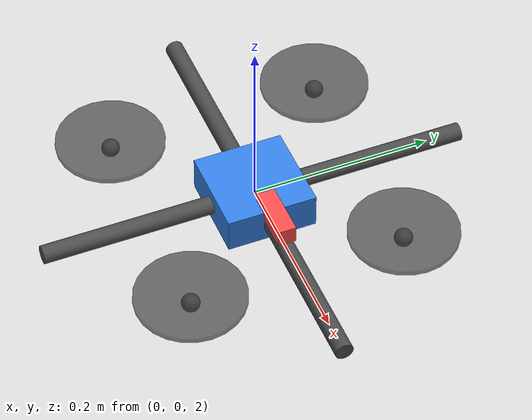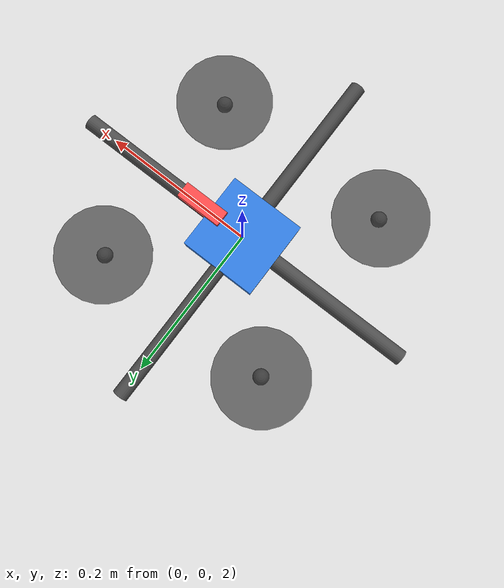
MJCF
<mujoco model="quadrotor">
  <compiler angle="radian"/>
  <option gravity="0 0 -9.81" timestep="0.016"/>

  <visual>
    <headlight ambient="0.4 0.4 0.4" diffuse="0.8 0.8 0.8" specular="0.1 0.1 0.1"/>
    <rgba haze="0.15 0.25 0.35 1"/>
  </visual>

  <worldbody>
    <light pos="0 0 6" dir="0 0 -1" diffuse="0.8 0.8 0.8"/>
    <camera name="overview" pos="0 -8 5" xyaxes="1 0 0 0 0.5 1"/>
    <geom name="floor" type="plane" size="10 10 0.1" rgba="0.7 0.7 0.7 1" friction="1 0.005 0.0001"/>

    <body name="drone" pos="0 0 2">
      <freejoint name="root"/>
      <inertial mass="0.716" pos="0 0 0" diaginertia="0.007 0.007 0.012"/>

      <!-- Central body -->
      <geom type="box" size="0.05 0.05 0.02" rgba="0.2 0.5 0.9 1"/>

      <!-- Arm cross -->
      <geom type="cylinder" size="0.01 0.12" pos=" 0.12 0 0" euler="0 1.5708 0" rgba="0.3 0.3 0.3 1"/>
      <geom type="cylinder" size="0.01 0.12" pos="-0.12 0 0" euler="0 1.5708 0" rgba="0.3 0.3 0.3 1"/>
      <geom type="cylinder" size="0.01 0.12" pos="0  0.12 0" euler="1.5708 0 0" rgba="0.3 0.3 0.3 1"/>
      <geom type="cylinder" size="0.01 0.12" pos="0 -0.12 0" euler="1.5708 0 0" rgba="0.3 0.3 0.3 1"/>

      <!-- Rotor discs (visual only) -->
      <geom type="cylinder" size="0.06 0.003" pos=" 0.12  0.12 0.01" rgba="0.1 0.1 0.1 0.6"/>
      <geom type="cylinder" size="0.06 0.003" pos="-0.12  0.12 0.01" rgba="0.1 0.1 0.1 0.6"/>
      <geom type="cylinder" size="0.06 0.003" pos="-0.12 -0.12 0.01" rgba="0.1 0.1 0.1 0.6"/>
      <geom type="cylinder" size="0.06 0.003" pos=" 0.12 -0.12 0.01" rgba="0.1 0.1 0.1 0.6"/>

      <!-- Rotor force application sites (X config) -->
      <site name="rotor0" pos=" 0.12  0.12 0" size="0.01"/>
      <site name="rotor1" pos="-0.12  0.12 0" size="0.01"/>
      <site name="rotor2" pos="-0.12 -0.12 0" size="0.01"/>
      <site name="rotor3" pos=" 0.12 -0.12 0" size="0.01"/>

      <!-- Heading indicator (forward = +x) -->
      <geom type="box" size="0.03 0.01 0.01" pos="0.06 0 0.02" rgba="1 0.3 0.3 1"/>
    </body>
  </worldbody>
</mujoco>
